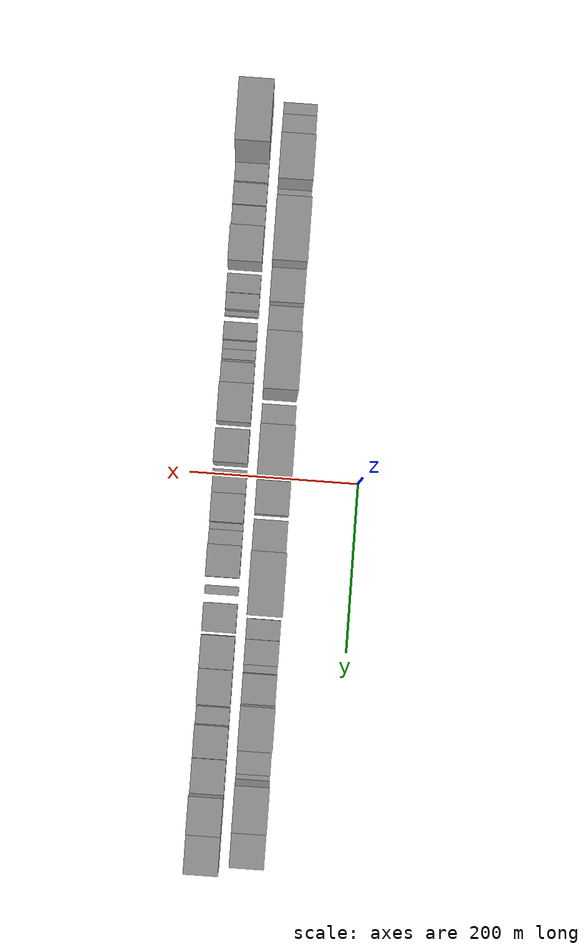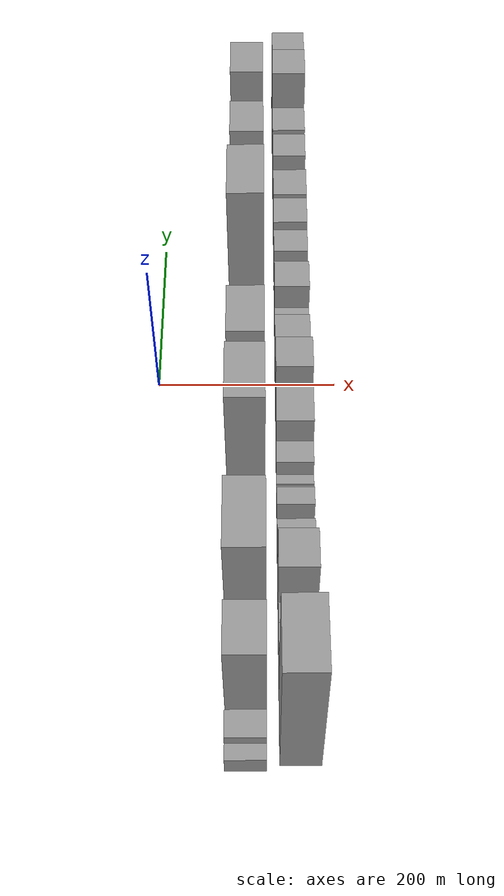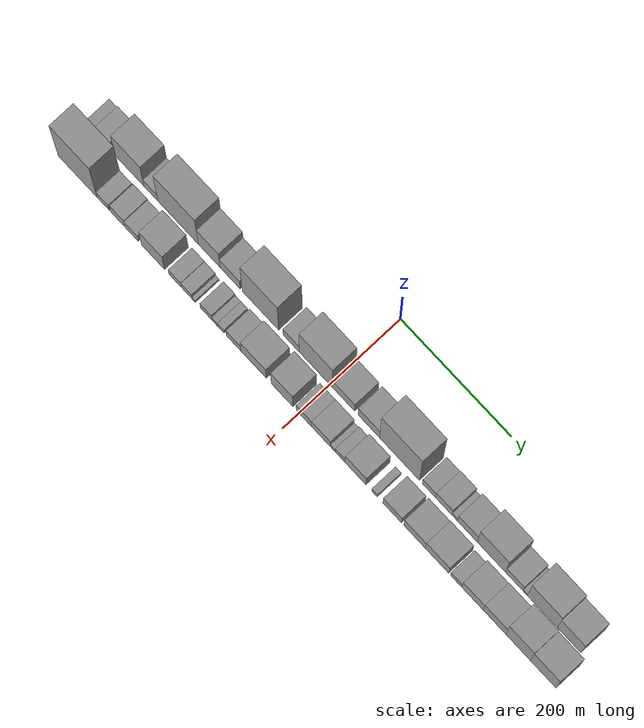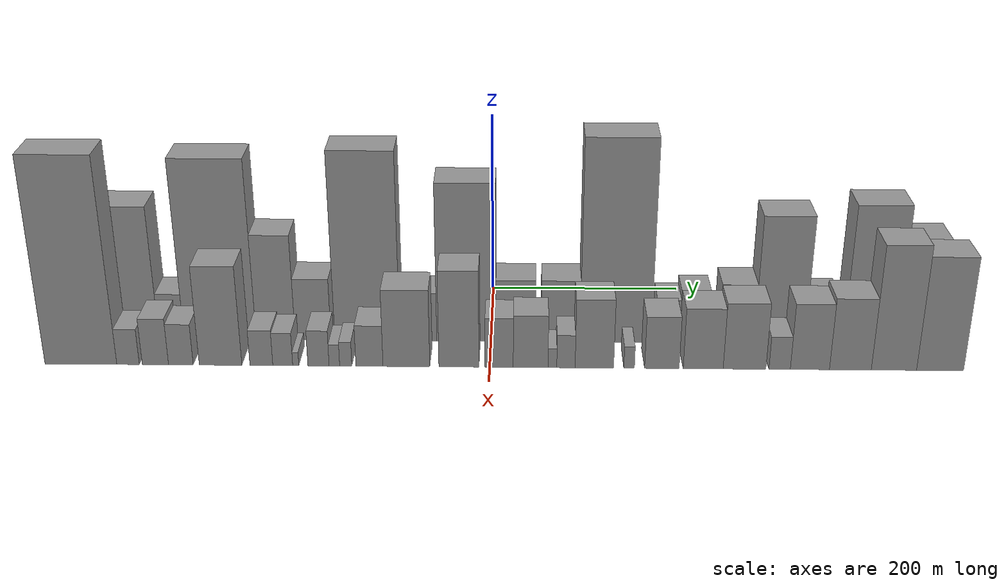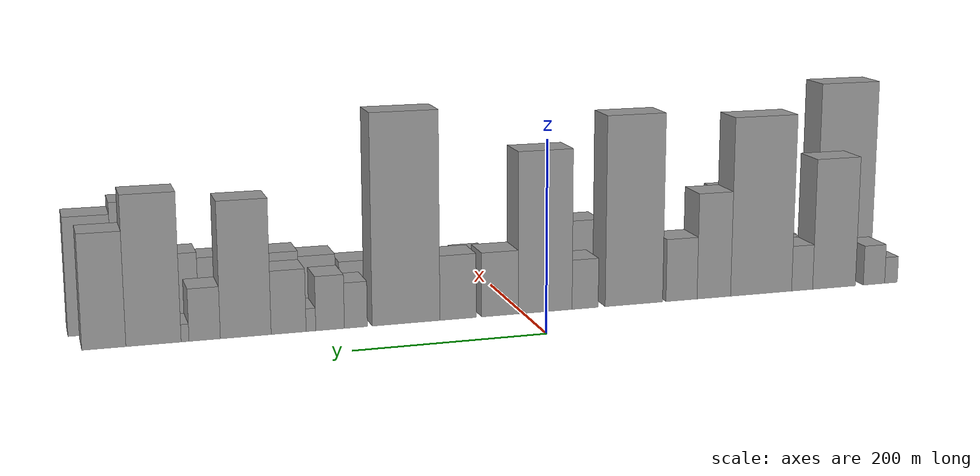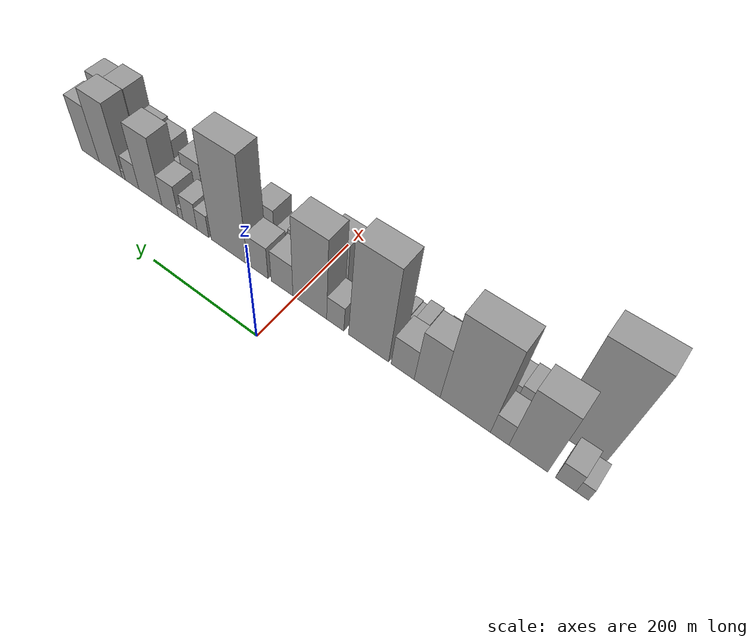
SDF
<sdf version="1.6">
 <world name="default">
  <scene>
   <sky><clouds><speed>12</speed></clouds></sky>
   <ambient>0.4 0.4 0.4 1</ambient>
   <background>0.7 0.7 0.7 1</background>
   <shadows>1</shadows>
  </scene>
  <gravity>0 0 -9.8066</gravity>
  <magnetic_field>6e-06 2.3e-05 -4.2e-05</magnetic_field>
  <physics default="0" name="default_physics" type="ode">
   <ode>
    <solver>
     <type>quick</type>
     <iters>10</iters>
     <sor>1.0</sor>
     <use_dynamic_moi_rescaling>0</use_dynamic_moi_rescaling>
    </solver>
    <constraints>
     <cfm>0</cfm>
     <erp>0.2</erp>
     <contact_max_correcting_vel>100</contact_max_correcting_vel>
     <contact_surface_layer>0.001</contact_surface_layer>
    </constraints>
   </ode>
   <max_step_size>0.004</max_step_size>
   <real_time_factor>1</real_time_factor>
   <real_time_update_rate>250</real_time_update_rate>
  </physics>
  <light name="sun" type="directional">
   <pose>0 0 10 0 0 0</pose>
   <diffuse>0.8 0.8 0.8 1</diffuse>
   <specular>0.2 0.2 0.2 1</specular>
   <attenuation>
    <range>1000</range>
    <constant>0.9</constant>
    <linear>0.01</linear>
    <quadratic>0.001</quadratic>
   </attenuation>
   <direction>-0.5 0.1 -0.9</direction>
  </light>
  <model name="building_1">
   <static>1</static>
   <pose>100.0000 -436.0047 0 0.000000 0.000000 0.000000</pose>
   <link name="link">
    <pose>0 0 15.00 0 0 0</pose>
    <collision name="collision"><geometry><box><size>40.0000 15.9906 30.0000</size></box></geometry></collision>
    <visual name="visual">
     <cast_shadows>0</cast_shadows>
     <geometry><box><size>40.0000 15.9906 30.0000</size></box></geometry>
     <material>
      <script>
       <uri>model://grey_wall/materials/scripts</uri>
       <uri>model://grey_wall/materials/textures</uri>
       <name>vrc/grey_wall</name>
      </script>
     </material>
    </visual>
   </link>
  </model>
  <model name="building_2">
   <static>1</static>
   <pose>100.0000 -414.5514 0 0.000000 0.000000 0.000000</pose>
   <link name="link">
    <pose>0 0 22.50 0 0 0</pose>
    <collision name="collision"><geometry><box><size>40.0000 26.9160 45.0000</size></box></geometry></collision>
    <visual name="visual">
     <cast_shadows>0</cast_shadows>
     <geometry><box><size>40.0000 26.9160 45.0000</size></box></geometry>
     <material>
      <script>
       <uri>model://grey_wall/materials/scripts</uri>
       <uri>model://grey_wall/materials/textures</uri>
       <name>vrc/grey_wall</name>
      </script>
     </material>
    </visual>
   </link>
  </model>
  <model name="building_3">
   <static>1</static>
   <pose>100.0000 -364.6266 0 0.000000 0.000000 0.000000</pose>
   <link name="link">
    <pose>0 0 73.50 0 0 0</pose>
    <collision name="collision"><geometry><box><size>40.0000 52.9337 147.0000</size></box></geometry></collision>
    <visual name="visual">
     <cast_shadows>0</cast_shadows>
     <geometry><box><size>40.0000 52.9337 147.0000</size></box></geometry>
     <material>
      <script>
       <uri>model://grey_wall/materials/scripts</uri>
       <uri>model://grey_wall/materials/textures</uri>
       <name>vrc/grey_wall</name>
      </script>
     </material>
    </visual>
   </link>
  </model>
  <model name="building_4">
   <static>1</static>
   <pose>100.0000 -325.2859 0 0.000000 0.000000 0.000000</pose>
   <link name="link">
    <pose>0 0 25.50 0 0 0</pose>
    <collision name="collision"><geometry><box><size>40.0000 25.7476 51.0000</size></box></geometry></collision>
    <visual name="visual">
     <cast_shadows>0</cast_shadows>
     <geometry><box><size>40.0000 25.7476 51.0000</size></box></geometry>
     <material>
      <script>
       <uri>model://grey_wall/materials/scripts</uri>
       <uri>model://grey_wall/materials/textures</uri>
       <name>vrc/grey_wall</name>
      </script>
     </material>
    </visual>
   </link>
  </model>
  <model name="building_5">
   <static>1</static>
   <pose>100.0000 -275.5729 0 0.000000 0.000000 0.000000</pose>
   <link name="link">
    <pose>0 0 99.00 0 0 0</pose>
    <collision name="collision"><geometry><box><size>40.0000 73.6785 198.0000</size></box></geometry></collision>
    <visual name="visual">
     <cast_shadows>0</cast_shadows>
     <geometry><box><size>40.0000 73.6785 198.0000</size></box></geometry>
     <material>
      <script>
       <uri>model://grey_wall/materials/scripts</uri>
       <uri>model://grey_wall/materials/textures</uri>
       <name>vrc/grey_wall</name>
      </script>
     </material>
    </visual>
   </link>
  </model>
  <model name="building_6">
   <static>1</static>
   <pose>100.0000 -218.8610 0 0.000000 0.000000 0.000000</pose>
   <link name="link">
    <pose>0 0 58.50 0 0 0</pose>
    <collision name="collision"><geometry><box><size>40.0000 39.7452 117.0000</size></box></geometry></collision>
    <visual name="visual">
     <cast_shadows>0</cast_shadows>
     <geometry><box><size>40.0000 39.7452 117.0000</size></box></geometry>
     <material>
      <script>
       <uri>model://grey_wall/materials/scripts</uri>
       <uri>model://grey_wall/materials/textures</uri>
       <name>vrc/grey_wall</name>
      </script>
     </material>
    </visual>
   </link>
  </model>
  <model name="building_7">
   <static>1</static>
   <pose>100.0000 -180.7990 0 0.000000 0.000000 0.000000</pose>
   <link name="link">
    <pose>0 0 34.50 0 0 0</pose>
    <collision name="collision"><geometry><box><size>40.0000 36.3788 69.0000</size></box></geometry></collision>
    <visual name="visual">
     <cast_shadows>0</cast_shadows>
     <geometry><box><size>40.0000 36.3788 69.0000</size></box></geometry>
     <material>
      <script>
       <uri>model://grey_wall/materials/scripts</uri>
       <uri>model://grey_wall/materials/textures</uri>
       <name>vrc/grey_wall</name>
      </script>
     </material>
    </visual>
   </link>
  </model>
  <model name="building_8">
   <static>1</static>
   <pose>100.0000 -125.5717 0 0.000000 0.000000 0.000000</pose>
   <link name="link">
    <pose>0 0 103.50 0 0 0</pose>
    <collision name="collision"><geometry><box><size>40.0000 66.0757 207.0000</size></box></geometry></collision>
    <visual name="visual">
     <cast_shadows>0</cast_shadows>
     <geometry><box><size>40.0000 66.0757 207.0000</size></box></geometry>
     <material>
      <script>
       <uri>model://grey_wall/materials/scripts</uri>
       <uri>model://grey_wall/materials/textures</uri>
       <name>vrc/grey_wall</name>
      </script>
     </material>
    </visual>
   </link>
  </model>
  <model name="building_9">
   <static>1</static>
   <pose>100.0000 -69.7478 0 0.000000 0.000000 0.000000</pose>
   <link name="link">
    <pose>0 0 27.00 0 0 0</pose>
    <collision name="collision"><geometry><box><size>40.0000 29.5720 54.0000</size></box></geometry></collision>
    <visual name="visual">
     <cast_shadows>0</cast_shadows>
     <geometry><box><size>40.0000 29.5720 54.0000</size></box></geometry>
     <material>
      <script>
       <uri>model://grey_wall/materials/scripts</uri>
       <uri>model://grey_wall/materials/textures</uri>
       <name>vrc/grey_wall</name>
      </script>
     </material>
    </visual>
   </link>
  </model>
  <model name="building_10">
   <static>1</static>
   <pose>100.0000 -24.8926 0 0.000000 0.000000 0.000000</pose>
   <link name="link">
    <pose>0 0 87.00 0 0 0</pose>
    <collision name="collision"><geometry><box><size>40.0000 60.1384 174.0000</size></box></geometry></collision>
    <visual name="visual">
     <cast_shadows>0</cast_shadows>
     <geometry><box><size>40.0000 60.1384 174.0000</size></box></geometry>
     <material>
      <script>
       <uri>model://grey_wall/materials/scripts</uri>
       <uri>model://grey_wall/materials/textures</uri>
       <name>vrc/grey_wall</name>
      </script>
     </material>
    </visual>
   </link>
  </model>
  <model name="building_11">
   <static>1</static>
   <pose>100.0000 25.2043 0 0.000000 0.000000 0.000000</pose>
   <link name="link">
    <pose>0 0 34.50 0 0 0</pose>
    <collision name="collision"><geometry><box><size>40.0000 40.0555 69.0000</size></box></geometry></collision>
    <visual name="visual">
     <cast_shadows>0</cast_shadows>
     <geometry><box><size>40.0000 40.0555 69.0000</size></box></geometry>
     <material>
      <script>
       <uri>model://grey_wall/materials/scripts</uri>
       <uri>model://grey_wall/materials/textures</uri>
       <name>vrc/grey_wall</name>
      </script>
     </material>
    </visual>
   </link>
  </model>
  <model name="building_12">
   <static>1</static>
   <pose>100.0000 70.8422 0 0.000000 0.000000 0.000000</pose>
   <link name="link">
    <pose>0 0 34.50 0 0 0</pose>
    <collision name="collision"><geometry><box><size>40.0000 39.2203 69.0000</size></box></geometry></collision>
    <visual name="visual">
     <cast_shadows>0</cast_shadows>
     <geometry><box><size>40.0000 39.2203 69.0000</size></box></geometry>
     <material>
      <script>
       <uri>model://grey_wall/materials/scripts</uri>
       <uri>model://grey_wall/materials/textures</uri>
       <name>vrc/grey_wall</name>
      </script>
     </material>
    </visual>
   </link>
  </model>
  <model name="building_13">
   <static>1</static>
   <pose>100.0000 126.4657 0 0.000000 0.000000 0.000000</pose>
   <link name="link">
    <pose>0 0 111.00 0 0 0</pose>
    <collision name="collision"><geometry><box><size>40.0000 72.0267 222.0000</size></box></geometry></collision>
    <visual name="visual">
     <cast_shadows>0</cast_shadows>
     <geometry><box><size>40.0000 72.0267 222.0000</size></box></geometry>
     <material>
      <script>
       <uri>model://grey_wall/materials/scripts</uri>
       <uri>model://grey_wall/materials/textures</uri>
       <name>vrc/grey_wall</name>
      </script>
     </material>
    </visual>
   </link>
  </model>
  <model name="building_14">
   <static>1</static>
   <pose>100.0000 179.4821 0 0.000000 0.000000 0.000000</pose>
   <link name="link">
    <pose>0 0 24.00 0 0 0</pose>
    <collision name="collision"><geometry><box><size>40.0000 24.0061 48.0000</size></box></geometry></collision>
    <visual name="visual">
     <cast_shadows>0</cast_shadows>
     <geometry><box><size>40.0000 24.0061 48.0000</size></box></geometry>
     <material>
      <script>
       <uri>model://grey_wall/materials/scripts</uri>
       <uri>model://grey_wall/materials/textures</uri>
       <name>vrc/grey_wall</name>
      </script>
     </material>
    </visual>
   </link>
  </model>
  <model name="building_15">
   <static>1</static>
   <pose>100.0000 206.3075 0 0.000000 0.000000 0.000000</pose>
   <link name="link">
    <pose>0 0 28.50 0 0 0</pose>
    <collision name="collision"><geometry><box><size>40.0000 29.6446 57.0000</size></box></geometry></collision>
    <visual name="visual">
     <cast_shadows>0</cast_shadows>
     <geometry><box><size>40.0000 29.6446 57.0000</size></box></geometry>
     <material>
      <script>
       <uri>model://grey_wall/materials/scripts</uri>
       <uri>model://grey_wall/materials/textures</uri>
       <name>vrc/grey_wall</name>
      </script>
     </material>
    </visual>
   </link>
  </model>
  <model name="building_16">
   <static>1</static>
   <pose>100.0000 226.1018 0 0.000000 0.000000 0.000000</pose>
   <link name="link">
    <pose>0 0 12.00 0 0 0</pose>
    <collision name="collision"><geometry><box><size>40.0000 9.9441 24.0000</size></box></geometry></collision>
    <visual name="visual">
     <cast_shadows>0</cast_shadows>
     <geometry><box><size>40.0000 9.9441 24.0000</size></box></geometry>
     <material>
      <script>
       <uri>model://grey_wall/materials/scripts</uri>
       <uri>model://grey_wall/materials/textures</uri>
       <name>vrc/grey_wall</name>
      </script>
     </material>
    </visual>
   </link>
  </model>
  <model name="building_17">
   <static>1</static>
   <pose>100.0000 248.8983 0 0.000000 0.000000 0.000000</pose>
   <link name="link">
    <pose>0 0 33.00 0 0 0</pose>
    <collision name="collision"><geometry><box><size>40.0000 35.6488 66.0000</size></box></geometry></collision>
    <visual name="visual">
     <cast_shadows>0</cast_shadows>
     <geometry><box><size>40.0000 35.6488 66.0000</size></box></geometry>
     <material>
      <script>
       <uri>model://grey_wall/materials/scripts</uri>
       <uri>model://grey_wall/materials/textures</uri>
       <name>vrc/grey_wall</name>
      </script>
     </material>
    </visual>
   </link>
  </model>
  <model name="building_18">
   <static>1</static>
   <pose>100.0000 292.2754 0 0.000000 0.000000 0.000000</pose>
   <link name="link">
    <pose>0 0 70.50 0 0 0</pose>
    <collision name="collision"><geometry><box><size>40.0000 51.1055 141.0000</size></box></geometry></collision>
    <visual name="visual">
     <cast_shadows>0</cast_shadows>
     <geometry><box><size>40.0000 51.1055 141.0000</size></box></geometry>
     <material>
      <script>
       <uri>model://grey_wall/materials/scripts</uri>
       <uri>model://grey_wall/materials/textures</uri>
       <name>vrc/grey_wall</name>
      </script>
     </material>
    </visual>
   </link>
  </model>
  <model name="building_19">
   <static>1</static>
   <pose>100.0000 333.3873 0 0.000000 0.000000 0.000000</pose>
   <link name="link">
    <pose>0 0 27.00 0 0 0</pose>
    <collision name="collision"><geometry><box><size>40.0000 31.1182 54.0000</size></box></geometry></collision>
    <visual name="visual">
     <cast_shadows>0</cast_shadows>
     <geometry><box><size>40.0000 31.1182 54.0000</size></box></geometry>
     <material>
      <script>
       <uri>model://grey_wall/materials/scripts</uri>
       <uri>model://grey_wall/materials/textures</uri>
       <name>vrc/grey_wall</name>
      </script>
     </material>
    </visual>
   </link>
  </model>
  <model name="building_20">
   <static>1</static>
   <pose>100.0000 352.8147 0 0.000000 0.000000 0.000000</pose>
   <link name="link">
    <pose>0 0 9.00 0 0 0</pose>
    <collision name="collision"><geometry><box><size>40.0000 7.7366 18.0000</size></box></geometry></collision>
    <visual name="visual">
     <cast_shadows>0</cast_shadows>
     <geometry><box><size>40.0000 7.7366 18.0000</size></box></geometry>
     <material>
      <script>
       <uri>model://grey_wall/materials/scripts</uri>
       <uri>model://grey_wall/materials/textures</uri>
       <name>vrc/grey_wall</name>
      </script>
     </material>
    </visual>
   </link>
  </model>
  <model name="building_21">
   <static>1</static>
   <pose>100.0000 383.6307 0 0.000000 0.000000 0.000000</pose>
   <link name="link">
    <pose>0 0 76.50 0 0 0</pose>
    <collision name="collision"><geometry><box><size>40.0000 53.8956 153.0000</size></box></geometry></collision>
    <visual name="visual">
     <cast_shadows>0</cast_shadows>
     <geometry><box><size>40.0000 53.8956 153.0000</size></box></geometry>
     <material>
      <script>
       <uri>model://grey_wall/materials/scripts</uri>
       <uri>model://grey_wall/materials/textures</uri>
       <name>vrc/grey_wall</name>
      </script>
     </material>
    </visual>
   </link>
  </model>
  <model name="building_22">
   <static>1</static>
   <pose>100.0000 431.7783 0 0.000000 0.000000 0.000000</pose>
   <link name="link">
    <pose>0 0 58.50 0 0 0</pose>
    <collision name="collision"><geometry><box><size>40.0000 42.3995 117.0000</size></box></geometry></collision>
    <visual name="visual">
     <cast_shadows>0</cast_shadows>
     <geometry><box><size>40.0000 42.3995 117.0000</size></box></geometry>
     <material>
      <script>
       <uri>model://grey_wall/materials/scripts</uri>
       <uri>model://grey_wall/materials/textures</uri>
       <name>vrc/grey_wall</name>
      </script>
     </material>
    </visual>
   </link>
  </model>
  <model name="building_23">
   <static>1</static>
   <pose>152.0000 -403.4323 0 0.000000 0.000000 0.000000</pose>
   <link name="link">
    <pose>0 0 111.00 0 0 0</pose>
    <collision name="collision"><geometry><box><size>40.0000 71.1354 222.0000</size></box></geometry></collision>
    <visual name="visual">
     <cast_shadows>0</cast_shadows>
     <geometry><box><size>40.0000 71.1354 222.0000</size></box></geometry>
     <material>
      <script>
       <uri>model://grey_wall/materials/scripts</uri>
       <uri>model://grey_wall/materials/textures</uri>
       <name>vrc/grey_wall</name>
      </script>
     </material>
    </visual>
   </link>
  </model>
  <model name="building_24">
   <static>1</static>
   <pose>152.0000 -356.7280 0 0.000000 0.000000 0.000000</pose>
   <link name="link">
    <pose>0 0 19.50 0 0 0</pose>
    <collision name="collision"><geometry><box><size>40.0000 22.2733 39.0000</size></box></geometry></collision>
    <visual name="visual">
     <cast_shadows>0</cast_shadows>
     <geometry><box><size>40.0000 22.2733 39.0000</size></box></geometry>
     <material>
      <script>
       <uri>model://grey_wall/materials/scripts</uri>
       <uri>model://grey_wall/materials/textures</uri>
       <name>vrc/grey_wall</name>
      </script>
     </material>
    </visual>
   </link>
  </model>
  <model name="building_25">
   <static>1</static>
   <pose>152.0000 -329.6420 0 0.000000 0.000000 0.000000</pose>
   <link name="link">
    <pose>0 0 25.50 0 0 0</pose>
    <collision name="collision"><geometry><box><size>40.0000 25.8987 51.0000</size></box></geometry></collision>
    <visual name="visual">
     <cast_shadows>0</cast_shadows>
     <geometry><box><size>40.0000 25.8987 51.0000</size></box></geometry>
     <material>
      <script>
       <uri>model://grey_wall/materials/scripts</uri>
       <uri>model://grey_wall/materials/textures</uri>
       <name>vrc/grey_wall</name>
      </script>
     </material>
    </visual>
   </link>
  </model>
  <model name="building_26">
   <static>1</static>
   <pose>152.0000 -304.5049 0 0.000000 0.000000 0.000000</pose>
   <link name="link">
    <pose>0 0 22.50 0 0 0</pose>
    <collision name="collision"><geometry><box><size>40.0000 24.3754 45.0000</size></box></geometry></collision>
    <visual name="visual">
     <cast_shadows>0</cast_shadows>
     <geometry><box><size>40.0000 24.3754 45.0000</size></box></geometry>
     <material>
      <script>
       <uri>model://grey_wall/materials/scripts</uri>
       <uri>model://grey_wall/materials/textures</uri>
       <name>vrc/grey_wall</name>
      </script>
     </material>
    </visual>
   </link>
  </model>
  <model name="building_27">
   <static>1</static>
   <pose>152.0000 -265.2727 0 0.000000 0.000000 0.000000</pose>
   <link name="link">
    <pose>0 0 54.00 0 0 0</pose>
    <collision name="collision"><geometry><box><size>40.0000 42.0890 108.0000</size></box></geometry></collision>
    <visual name="visual">
     <cast_shadows>0</cast_shadows>
     <geometry><box><size>40.0000 42.0890 108.0000</size></box></geometry>
     <material>
      <script>
       <uri>model://grey_wall/materials/scripts</uri>
       <uri>model://grey_wall/materials/textures</uri>
       <name>vrc/grey_wall</name>
      </script>
     </material>
    </visual>
   </link>
  </model>
  <model name="building_28">
   <static>1</static>
   <pose>152.0000 -224.9387 0 0.000000 0.000000 0.000000</pose>
   <link name="link">
    <pose>0 0 19.50 0 0 0</pose>
    <collision name="collision"><geometry><box><size>40.0000 22.5790 39.0000</size></box></geometry></collision>
    <visual name="visual">
     <cast_shadows>0</cast_shadows>
     <geometry><box><size>40.0000 22.5790 39.0000</size></box></geometry>
     <material>
      <script>
       <uri>model://grey_wall/materials/scripts</uri>
       <uri>model://grey_wall/materials/textures</uri>
       <name>vrc/grey_wall</name>
      </script>
     </material>
    </visual>
   </link>
  </model>
  <model name="building_29">
   <static>1</static>
   <pose>152.0000 -203.8455 0 0.000000 0.000000 0.000000</pose>
   <link name="link">
    <pose>0 0 18.00 0 0 0</pose>
    <collision name="collision"><geometry><box><size>40.0000 19.6075 36.0000</size></box></geometry></collision>
    <visual name="visual">
     <cast_shadows>0</cast_shadows>
     <geometry><box><size>40.0000 19.6075 36.0000</size></box></geometry>
     <material>
      <script>
       <uri>model://grey_wall/materials/scripts</uri>
       <uri>model://grey_wall/materials/textures</uri>
       <name>vrc/grey_wall</name>
      </script>
     </material>
    </visual>
   </link>
  </model>
  <model name="building_30">
   <static>1</static>
   <pose>152.0000 -191.0345 0 0.000000 0.000000 0.000000</pose>
   <link name="link">
    <pose>0 0 7.50 0 0 0</pose>
    <collision name="collision"><geometry><box><size>40.0000 6.0144 15.0000</size></box></geometry></collision>
    <visual name="visual">
     <cast_shadows>0</cast_shadows>
     <geometry><box><size>40.0000 6.0144 15.0000</size></box></geometry>
     <material>
      <script>
       <uri>model://grey_wall/materials/scripts</uri>
       <uri>model://grey_wall/materials/textures</uri>
       <name>vrc/grey_wall</name>
      </script>
     </material>
    </visual>
   </link>
  </model>
  <model name="building_31">
   <static>1</static>
   <pose>152.0000 -168.5928 0 0.000000 0.000000 0.000000</pose>
   <link name="link">
    <pose>0 0 19.50 0 0 0</pose>
    <collision name="collision"><geometry><box><size>40.0000 20.8690 39.0000</size></box></geometry></collision>
    <visual name="visual">
     <cast_shadows>0</cast_shadows>
     <geometry><box><size>40.0000 20.8690 39.0000</size></box></geometry>
     <material>
      <script>
       <uri>model://grey_wall/materials/scripts</uri>
       <uri>model://grey_wall/materials/textures</uri>
       <name>vrc/grey_wall</name>
      </script>
     </material>
    </visual>
   </link>
  </model>
  <model name="building_32">
   <static>1</static>
   <pose>152.0000 -152.9620 0 0.000000 0.000000 0.000000</pose>
   <link name="link">
    <pose>0 0 12.00 0 0 0</pose>
    <collision name="collision"><geometry><box><size>40.0000 10.3926 24.0000</size></box></geometry></collision>
    <visual name="visual">
     <cast_shadows>0</cast_shadows>
     <geometry><box><size>40.0000 10.3926 24.0000</size></box></geometry>
     <material>
      <script>
       <uri>model://grey_wall/materials/scripts</uri>
       <uri>model://grey_wall/materials/textures</uri>
       <name>vrc/grey_wall</name>
      </script>
     </material>
    </visual>
   </link>
  </model>
  <model name="building_33">
   <static>1</static>
   <pose>152.0000 -141.7623 0 0.000000 0.000000 0.000000</pose>
   <link name="link">
    <pose>0 0 13.50 0 0 0</pose>
    <collision name="collision"><geometry><box><size>40.0000 12.0068 27.0000</size></box></geometry></collision>
    <visual name="visual">
     <cast_shadows>0</cast_shadows>
     <geometry><box><size>40.0000 12.0068 27.0000</size></box></geometry>
     <material>
      <script>
       <uri>model://grey_wall/materials/scripts</uri>
       <uri>model://grey_wall/materials/textures</uri>
       <name>vrc/grey_wall</name>
      </script>
     </material>
    </visual>
   </link>
  </model>
  <model name="building_34">
   <static>1</static>
   <pose>152.0000 -118.3894 0 0.000000 0.000000 0.000000</pose>
   <link name="link">
    <pose>0 0 22.50 0 0 0</pose>
    <collision name="collision"><geometry><box><size>40.0000 26.7391 45.0000</size></box></geometry></collision>
    <visual name="visual">
     <cast_shadows>0</cast_shadows>
     <geometry><box><size>40.0000 26.7391 45.0000</size></box></geometry>
     <material>
      <script>
       <uri>model://grey_wall/materials/scripts</uri>
       <uri>model://grey_wall/materials/textures</uri>
       <name>vrc/grey_wall</name>
      </script>
     </material>
    </visual>
   </link>
  </model>
  <model name="building_35">
   <static>1</static>
   <pose>152.0000 -82.0137 0 0.000000 0.000000 0.000000</pose>
   <link name="link">
    <pose>0 0 42.00 0 0 0</pose>
    <collision name="collision"><geometry><box><size>40.0000 46.0122 84.0000</size></box></geometry></collision>
    <visual name="visual">
     <cast_shadows>0</cast_shadows>
     <geometry><box><size>40.0000 46.0122 84.0000</size></box></geometry>
     <material>
      <script>
       <uri>model://grey_wall/materials/scripts</uri>
       <uri>model://grey_wall/materials/textures</uri>
       <name>vrc/grey_wall</name>
      </script>
     </material>
    </visual>
   </link>
  </model>
  <model name="building_36">
   <static>1</static>
   <pose>152.0000 -30.3191 0 0.000000 0.000000 0.000000</pose>
   <link name="link">
    <pose>0 0 52.50 0 0 0</pose>
    <collision name="collision"><geometry><box><size>40.0000 39.3770 105.0000</size></box></geometry></collision>
    <visual name="visual">
     <cast_shadows>0</cast_shadows>
     <geometry><box><size>40.0000 39.3770 105.0000</size></box></geometry>
     <material>
      <script>
       <uri>model://grey_wall/materials/scripts</uri>
       <uri>model://grey_wall/materials/textures</uri>
       <name>vrc/grey_wall</name>
      </script>
     </material>
    </visual>
   </link>
  </model>
  <model name="building_37">
   <static>1</static>
   <pose>152.0000 9.2119 0 0.000000 0.000000 0.000000</pose>
   <link name="link">
    <pose>0 0 27.00 0 0 0</pose>
    <collision name="collision"><geometry><box><size>40.0000 27.6851 54.0000</size></box></geometry></collision>
    <visual name="visual">
     <cast_shadows>0</cast_shadows>
     <geometry><box><size>40.0000 27.6851 54.0000</size></box></geometry>
     <material>
      <script>
       <uri>model://grey_wall/materials/scripts</uri>
       <uri>model://grey_wall/materials/textures</uri>
       <name>vrc/grey_wall</name>
      </script>
     </material>
    </visual>
   </link>
  </model>
  <model name="building_38">
   <static>1</static>
   <pose>152.0000 40.1477 0 0.000000 0.000000 0.000000</pose>
   <link name="link">
    <pose>0 0 28.50 0 0 0</pose>
    <collision name="collision"><geometry><box><size>40.0000 34.1865 57.0000</size></box></geometry></collision>
    <visual name="visual">
     <cast_shadows>0</cast_shadows>
     <geometry><box><size>40.0000 34.1865 57.0000</size></box></geometry>
     <material>
      <script>
       <uri>model://grey_wall/materials/scripts</uri>
       <uri>model://grey_wall/materials/textures</uri>
       <name>vrc/grey_wall</name>
      </script>
     </material>
    </visual>
   </link>
  </model>
  <model name="building_39">
   <static>1</static>
   <pose>152.0000 61.5253 0 0.000000 0.000000 0.000000</pose>
   <link name="link">
    <pose>0 0 10.50 0 0 0</pose>
    <collision name="collision"><geometry><box><size>40.0000 8.5686 21.0000</size></box></geometry></collision>
    <visual name="visual">
     <cast_shadows>0</cast_shadows>
     <geometry><box><size>40.0000 8.5686 21.0000</size></box></geometry>
     <material>
      <script>
       <uri>model://grey_wall/materials/scripts</uri>
       <uri>model://grey_wall/materials/textures</uri>
       <name>vrc/grey_wall</name>
      </script>
     </material>
    </visual>
   </link>
  </model>
  <model name="building_40">
   <static>1</static>
   <pose>152.0000 74.8175 0 0.000000 0.000000 0.000000</pose>
   <link name="link">
    <pose>0 0 18.00 0 0 0</pose>
    <collision name="collision"><geometry><box><size>40.0000 18.0157 36.0000</size></box></geometry></collision>
    <visual name="visual">
     <cast_shadows>0</cast_shadows>
     <geometry><box><size>40.0000 18.0157 36.0000</size></box></geometry>
     <material>
      <script>
       <uri>model://grey_wall/materials/scripts</uri>
       <uri>model://grey_wall/materials/textures</uri>
       <name>vrc/grey_wall</name>
      </script>
     </material>
    </visual>
   </link>
  </model>
  <model name="building_41">
   <static>1</static>
   <pose>152.0000 102.7300 0 0.000000 0.000000 0.000000</pose>
   <link name="link">
    <pose>0 0 37.50 0 0 0</pose>
    <collision name="collision"><geometry><box><size>40.0000 37.8094 75.0000</size></box></geometry></collision>
    <visual name="visual">
     <cast_shadows>0</cast_shadows>
     <geometry><box><size>40.0000 37.8094 75.0000</size></box></geometry>
     <material>
      <script>
       <uri>model://grey_wall/materials/scripts</uri>
       <uri>model://grey_wall/materials/textures</uri>
       <name>vrc/grey_wall</name>
      </script>
     </material>
    </visual>
   </link>
  </model>
  <model name="building_42">
   <static>1</static>
   <pose>152.0000 136.8288 0 0.000000 0.000000 0.000000</pose>
   <link name="link">
    <pose>0 0 12.00 0 0 0</pose>
    <collision name="collision"><geometry><box><size>40.0000 10.3882 24.0000</size></box></geometry></collision>
    <visual name="visual">
     <cast_shadows>0</cast_shadows>
     <geometry><box><size>40.0000 10.3882 24.0000</size></box></geometry>
     <material>
      <script>
       <uri>model://grey_wall/materials/scripts</uri>
       <uri>model://grey_wall/materials/textures</uri>
       <name>vrc/grey_wall</name>
      </script>
     </material>
    </visual>
   </link>
  </model>
  <model name="building_43">
   <static>1</static>
   <pose>152.0000 168.9314 0 0.000000 0.000000 0.000000</pose>
   <link name="link">
    <pose>0 0 28.50 0 0 0</pose>
    <collision name="collision"><geometry><box><size>40.0000 33.8170 57.0000</size></box></geometry></collision>
    <visual name="visual">
     <cast_shadows>0</cast_shadows>
     <geometry><box><size>40.0000 33.8170 57.0000</size></box></geometry>
     <material>
      <script>
       <uri>model://grey_wall/materials/scripts</uri>
       <uri>model://grey_wall/materials/textures</uri>
       <name>vrc/grey_wall</name>
      </script>
     </material>
    </visual>
   </link>
  </model>
  <model name="building_44">
   <static>1</static>
   <pose>152.0000 209.3915 0 0.000000 0.000000 0.000000</pose>
   <link name="link">
    <pose>0 0 33.00 0 0 0</pose>
    <collision name="collision"><geometry><box><size>40.0000 39.1034 66.0000</size></box></geometry></collision>
    <visual name="visual">
     <cast_shadows>0</cast_shadows>
     <geometry><box><size>40.0000 39.1034 66.0000</size></box></geometry>
     <material>
      <script>
       <uri>model://grey_wall/materials/scripts</uri>
       <uri>model://grey_wall/materials/textures</uri>
       <name>vrc/grey_wall</name>
      </script>
     </material>
    </visual>
   </link>
  </model>
  <model name="building_45">
   <static>1</static>
   <pose>152.0000 249.8502 0 0.000000 0.000000 0.000000</pose>
   <link name="link">
    <pose>0 0 36.00 0 0 0</pose>
    <collision name="collision"><geometry><box><size>40.0000 41.8139 72.0000</size></box></geometry></collision>
    <visual name="visual">
     <cast_shadows>0</cast_shadows>
     <geometry><box><size>40.0000 41.8139 72.0000</size></box></geometry>
     <material>
      <script>
       <uri>model://grey_wall/materials/scripts</uri>
       <uri>model://grey_wall/materials/textures</uri>
       <name>vrc/grey_wall</name>
      </script>
     </material>
    </visual>
   </link>
  </model>
  <model name="building_46">
   <static>1</static>
   <pose>152.0000 284.1817 0 0.000000 0.000000 0.000000</pose>
   <link name="link">
    <pose>0 0 18.00 0 0 0</pose>
    <collision name="collision"><geometry><box><size>40.0000 20.8492 36.0000</size></box></geometry></collision>
    <visual name="visual">
     <cast_shadows>0</cast_shadows>
     <geometry><box><size>40.0000 20.8492 36.0000</size></box></geometry>
     <material>
      <script>
       <uri>model://grey_wall/materials/scripts</uri>
       <uri>model://grey_wall/materials/textures</uri>
       <name>vrc/grey_wall</name>
      </script>
     </material>
    </visual>
   </link>
  </model>
  <model name="building_47">
   <static>1</static>
   <pose>152.0000 313.7366 0 0.000000 0.000000 0.000000</pose>
   <link name="link">
    <pose>0 0 36.00 0 0 0</pose>
    <collision name="collision"><geometry><box><size>40.0000 38.2607 72.0000</size></box></geometry></collision>
    <visual name="visual">
     <cast_shadows>0</cast_shadows>
     <geometry><box><size>40.0000 38.2607 72.0000</size></box></geometry>
     <material>
      <script>
       <uri>model://grey_wall/materials/scripts</uri>
       <uri>model://grey_wall/materials/textures</uri>
       <name>vrc/grey_wall</name>
      </script>
     </material>
    </visual>
   </link>
  </model>
  <model name="building_48">
   <static>1</static>
   <pose>152.0000 353.2855 0 0.000000 0.000000 0.000000</pose>
   <link name="link">
    <pose>0 0 39.00 0 0 0</pose>
    <collision name="collision"><geometry><box><size>40.0000 40.8370 78.0000</size></box></geometry></collision>
    <visual name="visual">
     <cast_shadows>0</cast_shadows>
     <geometry><box><size>40.0000 40.8370 78.0000</size></box></geometry>
     <material>
      <script>
       <uri>model://grey_wall/materials/scripts</uri>
       <uri>model://grey_wall/materials/textures</uri>
       <name>vrc/grey_wall</name>
      </script>
     </material>
    </visual>
   </link>
  </model>
  <model name="building_49">
   <static>1</static>
   <pose>152.0000 395.8214 0 0.000000 0.000000 0.000000</pose>
   <link name="link">
    <pose>0 0 67.50 0 0 0</pose>
    <collision name="collision"><geometry><box><size>40.0000 44.2348 135.0000</size></box></geometry></collision>
    <visual name="visual">
     <cast_shadows>0</cast_shadows>
     <geometry><box><size>40.0000 44.2348 135.0000</size></box></geometry>
     <material>
      <script>
       <uri>model://grey_wall/materials/scripts</uri>
       <uri>model://grey_wall/materials/textures</uri>
       <name>vrc/grey_wall</name>
      </script>
     </material>
    </visual>
   </link>
  </model>
  <model name="building_50">
   <static>1</static>
   <pose>152.0000 440.8345 0 0.000000 0.000000 0.000000</pose>
   <link name="link">
    <pose>0 0 61.50 0 0 0</pose>
    <collision name="collision"><geometry><box><size>40.0000 45.7916 123.0000</size></box></geometry></collision>
    <visual name="visual">
     <cast_shadows>0</cast_shadows>
     <geometry><box><size>40.0000 45.7916 123.0000</size></box></geometry>
     <material>
      <script>
       <uri>model://grey_wall/materials/scripts</uri>
       <uri>model://grey_wall/materials/textures</uri>
       <name>vrc/grey_wall</name>
      </script>
     </material>
    </visual>
   </link>
  </model>
 </world>
</sdf>
